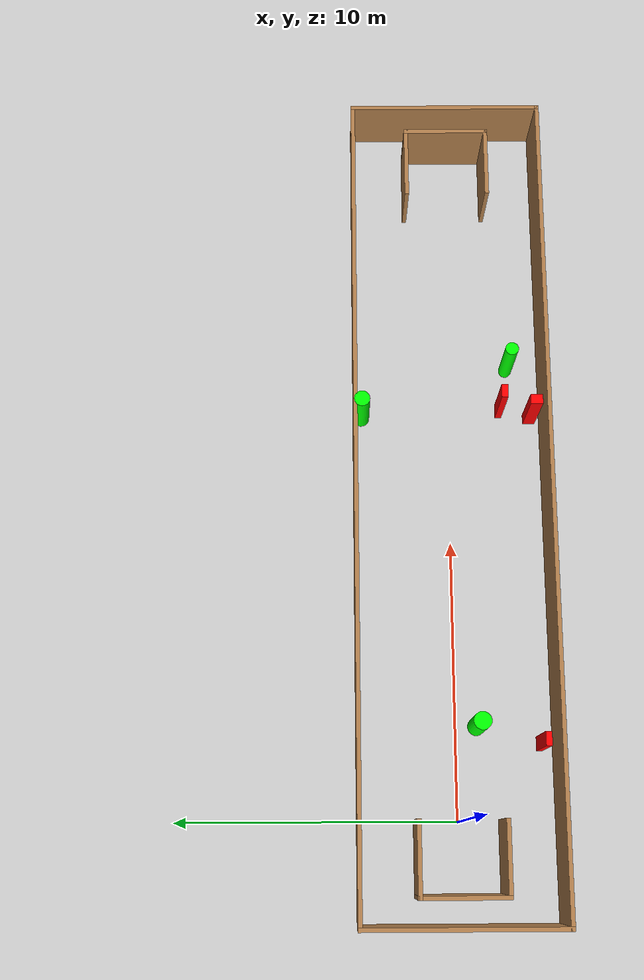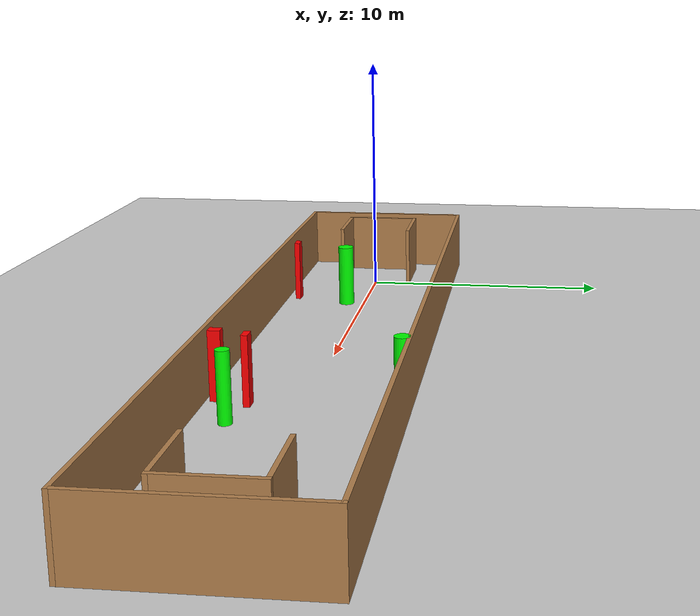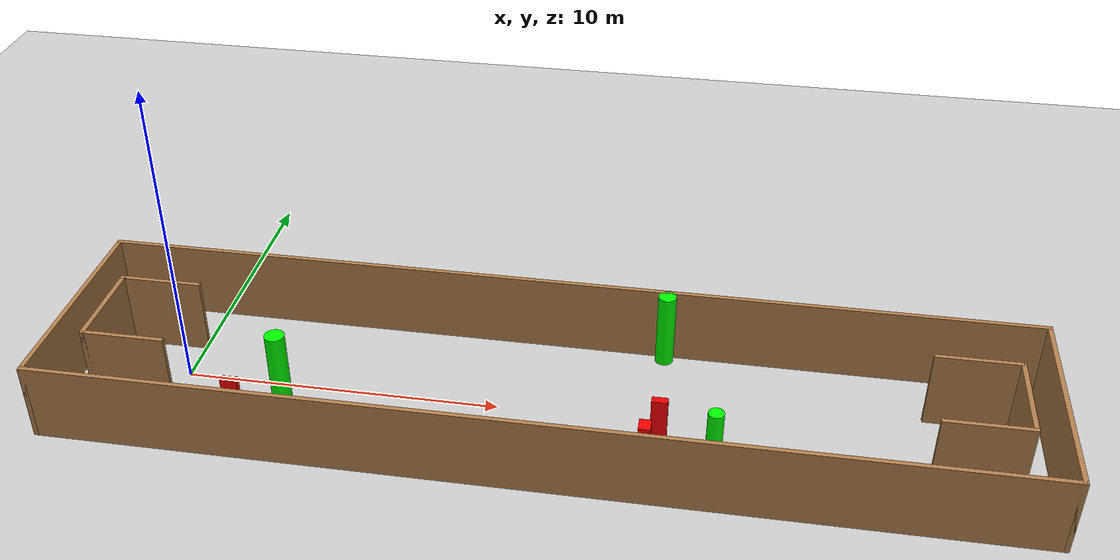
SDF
<sdf version="1.7">
 <world name="default">
  <light name="sun" type="directional">
   <pose>0 0 10 0 -0 0</pose>
   <diffuse>0.8 0.8 0.8 1</diffuse>
   <specular>0.2 0.2 0.2 1</specular>
   <attenuation>
    <range>1000</range>
    <constant>0.9</constant>
    <linear>0.01</linear>
    <quadratic>0.001</quadratic>
   </attenuation>
   <direction>-0.5 0.1 -0.9</direction>
   <spot><inner_angle>0</inner_angle><outer_angle>0</outer_angle><falloff>0</falloff></spot>
  </light>
  <model name="ground_plane">
   <static>1</static>
   <link name="link">
    <collision name="collision">
     <geometry><plane><normal>0 0 1</normal><size>100 100</size></plane></geometry>
     <surface>
      <contact><collide_bitmask>65535</collide_bitmask></contact>
      <friction><ode><mu>100</mu><mu2>50</mu2></ode></friction>
     </surface>
    </collision>
    <visual name="visual">
     <cast_shadows>0</cast_shadows>
     <geometry><plane><normal>0 0 1</normal><size>100 100</size></plane></geometry>
     <material>
      <script><uri>file://media/materials/scripts/gazebo.material</uri><name>Gazebo/Grey</name></script>
     </material>
    </visual>
   </link>
  </model>
  <gravity>0 0 -9.8</gravity>
  <magnetic_field>6e-06 2.3e-05 -4.2e-05</magnetic_field>
  <atmosphere type="adiabatic"/>
  <physics type="ode">
   <max_step_size>0.001</max_step_size>
   <real_time_factor>1</real_time_factor>
   <real_time_update_rate>1000</real_time_update_rate>
  </physics>
  <scene><ambient>0.4 0.4 0.4 1</ambient><background>0.7 0.7 0.7 1</background><shadows>1</shadows></scene>
  <spherical_coordinates>
   <surface_model>EARTH_WGS84</surface_model>
   <latitude_deg>0</latitude_deg>
   <longitude_deg>0</longitude_deg>
   <elevation>0</elevation>
   <heading_deg>0</heading_deg>
  </spherical_coordinates>
  <model name="my_base_walls">
   <link name="Wall_0">
    <collision name="Wall_0_Collision">
     <geometry><box><size>7.15 0.15 2.5</size></box></geometry>
     <pose>0 0 1.25 0 -0 0</pose>
    </collision>
    <visual name="Wall_0_Visual">
     <pose>0 0 1.25 0 -0 0</pose>
     <geometry><box><size>7.15 0.15 2.5</size></box></geometry>
     <material>
      <script><uri>file://media/materials/scripts/gazebo.material</uri><name>Gazebo/Wood</name></script>
      <ambient>1 1 1 1</ambient>
     </material>
     <meta><layer>0</layer></meta>
    </visual>
    <pose>-15 0 0 0 -0 1.5708</pose>
   </link>
   <link name="Wall_10">
    <collision name="Wall_10_Collision">
     <geometry><box><size>2.65 0.15 2.5</size></box></geometry>
     <pose>0 0 1.25 0 -0 0</pose>
    </collision>
    <visual name="Wall_10_Visual">
     <pose>0 0 1.25 0 -0 0</pose>
     <geometry><box><size>2.65 0.15 2.5</size></box></geometry>
     <material>
      <script><uri>file://media/materials/scripts/gazebo.material</uri><name>Gazebo/Wood</name></script>
      <ambient>1 1 1 1</ambient>
     </material>
     <meta><layer>0</layer></meta>
    </visual>
    <pose>-12.75 -1.5 0 0 -0 0</pose>
   </link>
   <link name="Wall_12">
    <collision name="Wall_12_Collision">
     <geometry><box><size>2.65 0.15 2.5</size></box></geometry>
     <pose>0 0 1.25 0 -0 0</pose>
    </collision>
    <visual name="Wall_12_Visual">
     <pose>0 0 1.25 0 -0 0</pose>
     <geometry><box><size>2.65 0.15 2.5</size></box></geometry>
     <material>
      <script><uri>file://media/materials/scripts/gazebo.material</uri><name>Gazebo/Wood</name></script>
      <ambient>1 1 1 1</ambient>
     </material>
     <meta><layer>0</layer></meta>
    </visual>
    <pose>-12.75 1.5 0 0 -0 0</pose>
   </link>
   <link name="Wall_14">
    <collision name="Wall_14_Collision">
     <geometry><box><size>3.15 0.15 2.5</size></box></geometry>
     <pose>0 0 1.25 0 -0 0</pose>
    </collision>
    <visual name="Wall_14_Visual">
     <pose>0 0 1.25 0 -0 0</pose>
     <geometry><box><size>3.15 0.15 2.5</size></box></geometry>
     <material>
      <script><uri>file://media/materials/scripts/gazebo.material</uri><name>Gazebo/Wood</name></script>
      <ambient>1 1 1 1</ambient>
     </material>
     <meta><layer>0</layer></meta>
    </visual>
    <pose>14 0 0 0 -0 -1.5708</pose>
   </link>
   <link name="Wall_15">
    <collision name="Wall_15_Collision">
     <geometry><box><size>2.65 0.15 2.5</size></box></geometry>
     <pose>0 0 1.25 0 -0 0</pose>
    </collision>
    <visual name="Wall_15_Visual">
     <pose>0 0 1.25 0 -0 0</pose>
     <geometry><box><size>2.65 0.15 2.5</size></box></geometry>
     <material>
      <script><uri>file://media/materials/scripts/gazebo.material</uri><name>Gazebo/Wood</name></script>
      <ambient>1 1 1 1</ambient>
     </material>
     <meta><layer>0</layer></meta>
    </visual>
    <pose>12.75 -1.5 0 0 -0 3.14159</pose>
   </link>
   <link name="Wall_17">
    <collision name="Wall_17_Collision">
     <geometry><box><size>2.65 0.15 2.5</size></box></geometry>
     <pose>0 0 1.25 0 -0 0</pose>
    </collision>
    <visual name="Wall_17_Visual">
     <pose>0 0 1.25 0 -0 0</pose>
     <geometry><box><size>2.65 0.15 2.5</size></box></geometry>
     <material>
      <script><uri>file://media/materials/scripts/gazebo.material</uri><name>Gazebo/Wood</name></script>
      <ambient>1 1 1 1</ambient>
     </material>
     <meta><layer>0</layer></meta>
    </visual>
    <pose>12.75 1.5 0 0 -0 3.14159</pose>
   </link>
   <link name="Wall_2">
    <collision name="Wall_2_Collision">
     <geometry><box><size>30.15 0.15 2.5</size></box></geometry>
     <pose>0 0 1.25 0 -0 0</pose>
    </collision>
    <visual name="Wall_2_Visual">
     <pose>0 0 1.25 0 -0 0</pose>
     <geometry><box><size>30.15 0.15 2.5</size></box></geometry>
     <material>
      <script><uri>file://media/materials/scripts/gazebo.material</uri><name>Gazebo/Wood</name></script>
      <ambient>1 1 1 1</ambient>
     </material>
     <meta><layer>0</layer></meta>
    </visual>
    <pose>-0 -3.5 0 0 -0 0</pose>
   </link>
   <link name="Wall_4">
    <collision name="Wall_4_Collision">
     <geometry><box><size>30.15 0.15 2.5</size></box></geometry>
     <pose>0 0 1.25 0 -0 0</pose>
    </collision>
    <visual name="Wall_4_Visual">
     <pose>0 0 1.25 0 -0 0</pose>
     <geometry><box><size>30.15 0.15 2.5</size></box></geometry>
     <material>
      <script><uri>file://media/materials/scripts/gazebo.material</uri><name>Gazebo/Wood</name></script>
      <ambient>1 1 1 1</ambient>
     </material>
     <meta><layer>0</layer></meta>
    </visual>
    <pose>-0 3.5 0 0 -0 0</pose>
   </link>
   <link name="Wall_6">
    <collision name="Wall_6_Collision">
     <geometry><box><size>7.15 0.15 2.5</size></box></geometry>
     <pose>0 0 1.25 0 -0 0</pose>
    </collision>
    <visual name="Wall_6_Visual">
     <pose>0 0 1.25 0 -0 0</pose>
     <geometry><box><size>7.15 0.15 2.5</size></box></geometry>
     <material>
      <script><uri>file://media/materials/scripts/gazebo.material</uri><name>Gazebo/Wood</name></script>
      <ambient>1 1 1 1</ambient>
     </material>
     <meta><layer>0</layer></meta>
    </visual>
    <pose>15 0 0 0 -0 -1.5708</pose>
   </link>
   <link name="Wall_9">
    <collision name="Wall_9_Collision">
     <geometry><box><size>3.15 0.15 2.5</size></box></geometry>
     <pose>0 0 1.25 0 -0 0</pose>
    </collision>
    <visual name="Wall_9_Visual">
     <pose>0 0 1.25 0 -0 0</pose>
     <geometry><box><size>3.15 0.15 2.5</size></box></geometry>
     <material>
      <script><uri>file://media/materials/scripts/gazebo.material</uri><name>Gazebo/Wood</name></script>
      <ambient>1 1 1 1</ambient>
     </material>
     <meta><layer>0</layer></meta>
    </visual>
    <pose>-14 0 0 0 -0 -1.5708</pose>
   </link>
   <static>1</static>
   <pose>11.5 0 0 0 -0 0</pose>
  </model>
  <model name="cylinder1">
   <static>1</static>
   <link name="link">
    <inertial>
     <mass>1</mass>
     <inertia><ixx>0.5</ixx><ixy>0</ixy><ixz>0</ixz><iyy>0.5</iyy><iyz>0</iyz><izz>1</izz></inertia>
    </inertial>
    <collision name="collision">
     <geometry><cylinder><radius>0.3147028628942242</radius><length>2.5</length></cylinder></geometry>
    </collision>
    <visual name="visual">
     <geometry><cylinder><radius>0.3147028628942242</radius><length>2.5</length></cylinder></geometry>
     <material>
      <ambient>0 1 0 1</ambient>
      <diffuse>0 1 0 1</diffuse>
      <specular>0.1 0.1 0.1 1</specular>
      <emissive>0 0 0 0</emissive>
     </material>
    </visual>
   </link>
   <pose>3.3081367182272743 -0.7448461809563924 1.25 0 0 0</pose>
  </model>
  <model name="cylinder2">
   <static>1</static>
   <link name="link">
    <inertial>
     <mass>1</mass>
     <inertia><ixx>0.5</ixx><ixy>0</ixy><ixz>0</ixz><iyy>0.5</iyy><iyz>0</iyz><izz>1</izz></inertia>
    </inertial>
    <collision name="collision">
     <geometry><cylinder><radius>0.2888818244980949</radius><length>2.5</length></cylinder></geometry>
    </collision>
    <visual name="visual">
     <geometry><cylinder><radius>0.2888818244980949</radius><length>2.5</length></cylinder></geometry>
     <material>
      <ambient>0 1 0 1</ambient>
      <diffuse>0 1 0 1</diffuse>
      <specular>0.1 0.1 0.1 1</specular>
      <emissive>0 0 0 0</emissive>
     </material>
    </visual>
   </link>
   <pose>14.859124361847043 3.2530224531329317 1.25 0 0 0</pose>
  </model>
  <model name="cylinder3">
   <static>1</static>
   <link name="link">
    <inertial>
     <mass>1</mass>
     <inertia><ixx>0.5</ixx><ixy>0</ixy><ixz>0</ixz><iyy>0.5</iyy><iyz>0</iyz><izz>1</izz></inertia>
    </inertial>
    <collision name="collision">
     <geometry><cylinder><radius>0.23942432124005467</radius><length>2.5</length></cylinder></geometry>
    </collision>
    <visual name="visual">
     <geometry><cylinder><radius>0.23942432124005467</radius><length>2.5</length></cylinder></geometry>
     <material>
      <ambient>0 1 0 1</ambient>
      <diffuse>0 1 0 1</diffuse>
      <specular>0.1 0.1 0.1 1</specular>
      <emissive>0 0 0 0</emissive>
     </material>
    </visual>
   </link>
   <pose>16.72834041544862 -2.2256259389129203 1.25 0 0 0</pose>
  </model>
  <model name="box1">
   <static>1</static>
   <link name="link">
    <inertial>
     <mass>1</mass>
     <inertia><ixx>0.083</ixx><ixy>0</ixy><ixz>0</ixz><iyy>0.083</iyy><iyz>0</iyz><izz>0.083</izz></inertia>
    </inertial>
    <collision name="collision">
     <geometry><box><size>0.35045442964828094 0.4417212624519213 2.5</size></box></geometry>
    </collision>
    <visual name="visual">
     <geometry><box><size>0.35045442964828094 0.4417212624519213 2.5</size></box></geometry>
     <material>
      <ambient>1 0 0 1</ambient>
      <diffuse>1 0 0 1</diffuse>
      <specular>0.1 0.1 0.1 1</specular>
      <emissive>0 0 0 0</emissive>
     </material>
    </visual>
    <sensor name="my_contact" type="contact">
     <contact><collision>box_collision</collision><topic>__default_topic__</topic></contact>
    </sensor>
   </link>
   <pose>14.79798900675331 -3.0468404421473196 1.25 0 0 0</pose>
  </model>
  <model name="box2">
   <static>1</static>
   <link name="link">
    <inertial>
     <mass>1</mass>
     <inertia><ixx>0.083</ixx><ixy>0</ixy><ixz>0</ixz><iyy>0.083</iyy><iyz>0</iyz><izz>0.083</izz></inertia>
    </inertial>
    <collision name="collision">
     <geometry><box><size>0.4802363703702009 0.23220202385876987 2.5</size></box></geometry>
    </collision>
    <visual name="visual">
     <geometry><box><size>0.4802363703702009 0.23220202385876987 2.5</size></box></geometry>
     <material>
      <ambient>1 0 0 1</ambient>
      <diffuse>1 0 0 1</diffuse>
      <specular>0.1 0.1 0.1 1</specular>
      <emissive>0 0 0 0</emissive>
     </material>
    </visual>
    <sensor name="my_contact" type="contact">
     <contact><collision>box_collision</collision><topic>__default_topic__</topic></contact>
    </sensor>
   </link>
   <pose>15.112177627028466 -1.9070481260800216 1.25 0 0 0</pose>
  </model>
  <model name="box3">
   <static>1</static>
   <link name="link">
    <inertial>
     <mass>1</mass>
     <inertia><ixx>0.083</ixx><ixy>0</ixy><ixz>0</ixz><iyy>0.083</iyy><iyz>0</iyz><izz>0.083</izz></inertia>
    </inertial>
    <collision name="collision">
     <geometry><box><size>0.49806339268082106 0.21316063742495067 2.5</size></box></geometry>
    </collision>
    <visual name="visual">
     <geometry><box><size>0.49806339268082106 0.21316063742495067 2.5</size></box></geometry>
     <material>
      <ambient>1 0 0 1</ambient>
      <diffuse>1 0 0 1</diffuse>
      <specular>0.1 0.1 0.1 1</specular>
      <emissive>0 0 0 0</emissive>
     </material>
    </visual>
    <sensor name="my_contact" type="contact">
     <contact><collision>box_collision</collision><topic>__default_topic__</topic></contact>
    </sensor>
   </link>
   <pose>2.692880802729764 -2.969013288278121 1.25 0 0 0</pose>
  </model>
 </world>
</sdf>
